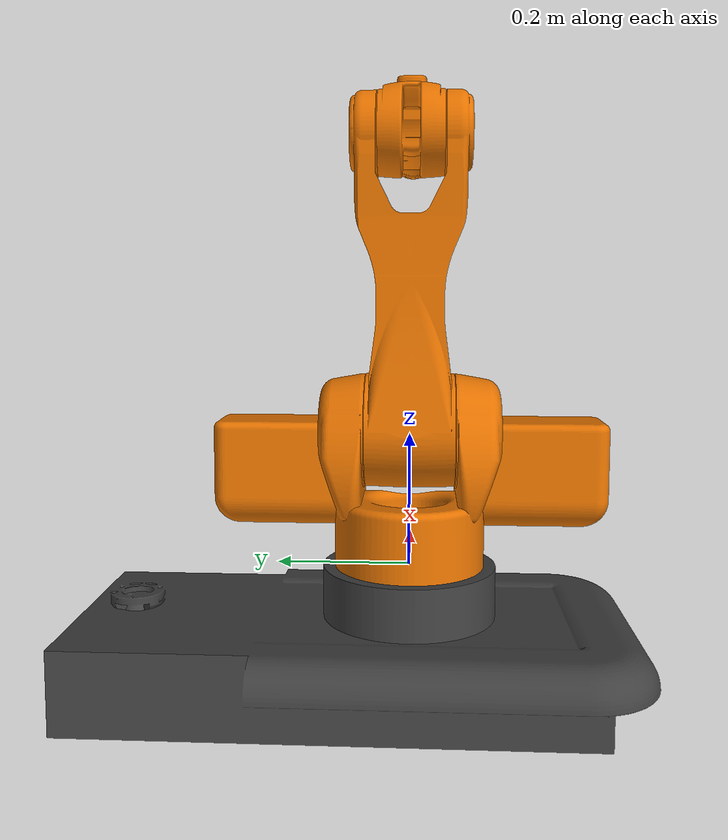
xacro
<?xml version="1.0"?>
<!--
  Wrapper URDF for motor 1 hardware test.
  Combines robot URDF + motor1_only ros2_control config.
-->
<robot xmlns:xacro="http://www.ros.org/wiki/xacro" name="neuroneimitationcarote">
    <xacro:arg name="initial_positions_file" default="$(find roby_hardware)/config/initial_positions.yaml" />
    <!-- Axe 5 : servo (poignet actuel, defaut) ou bldc (nouveau poignet) -->
    <xacro:arg name="wrist" default="servo" />
    <!-- Simulation seulement (commande roby en mode simulation, domaine 43) : mock_components a la place de RobySystem.
         JAMAIS sur le Pi5 : c'est la course au mock, steppers morts. -->
    <xacro:arg name="use_mock" default="false" />

    <!-- Import robot URDF -->
    <xacro:include filename="$(find neuroneimitationcarote_description)/urdf/robot.urdf.xacro" />

    <!-- Import steppers ros2_control config (joints 1-3 real, 4-5 mock) -->
    <xacro:include filename="$(find roby_hardware)/config/roby_hardware_steppers_only.ros2_control.xacro" />

    <xacro:roby_hardware_ros2_control name="RobySystem" initial_positions_file="$(arg initial_positions_file)" use_mock="$(arg use_mock)" wrist="$(arg wrist)"/>
</robot>

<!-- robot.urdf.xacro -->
<robot name="neuroneimitationcarote" xmlns:xacro="http://www.ros.org/wiki/xacro">

  <material name="dark_grey">
    <color rgba="0.25 0.25 0.25 1.0"/>
  </material>
  <material name="orange">
    <color rgba="0.9 0.45 0.0 1.0"/>
  </material>
  <material name="blue">
    <color rgba="0.1 0.4 0.8 1.0"/>
  </material>

<!-- Dummy world link requis par KDL -->
<link name="world"/>
<joint name="world_to_base" type="fixed">
  <parent link="world"/>
  <child  link="base_link"/>
  <origin xyz="0 0 0" rpy="0 0 0"/>
</joint>

  <!-- BASE_LINK -->
  <link name="base_link">
    <visual>
      <origin xyz="0 0 0.01" rpy="0 0 0"/>
      <geometry><cylinder radius="0.05" length="0.02"/></geometry>
      <material name="blue"/>
    </visual>
    <collision>
      <origin xyz="0 0 0.01" rpy="0 0 0"/>
      <geometry><cylinder radius="0.05" length="0.02"/></geometry>
    </collision>
  </link>

  <!-- JOINT 1 -->
  <joint name="joint_1" type="revolute">
    <parent link="base_link"/>
    <child  link="link_1"/>
    <!-- z = 0 : l'axe de base est POSE sur la face superieure du socle, qui affleure
         exactement l'origine (recalage du 2026-09-20). Valait 0.02 auparavant. -->
    <origin xyz="0 0 0" rpy="0 0 0"/>
    <axis xyz="0 0 1"/>
    <limit lower="-3.14159" upper="3.14159" effort="10.0" velocity="1.0"/>
    <dynamics damping="0.5" friction="0.1" acceleration="1.0"/>
  </joint>

  <!-- LINK 1 -->
  <link name="link_1">
    <visual>
      <origin xyz="0 0 0" rpy="0 0 0"/>
      <geometry>
        <mesh filename="package://neuroneimitationcarote_description/meshes/visual/section1_maillage.stl"
              scale="0.001 0.001 0.001"/>
      </geometry>
      <material name="orange"/>
    </visual>
    <collision>
      <origin xyz="0 0 0.082" rpy="0 0 0"/>
      <geometry><cylinder radius="0.120" length="0.16"/></geometry>
    </collision>
    <collision>
      <origin xyz="0.024 0 0.19" rpy="1.5707 0 0"/>
      <geometry><cylinder radius="0.10" length="0.28"/></geometry>
    </collision>
    <collision>
      <origin xyz="0.02 0 0.140" rpy="0 0 0"/>
      <geometry><box size="0.120 0.600 0.17"/></geometry>
    </collision>
    <inertial>
      <mass value="1.679"/>
      <origin xyz="0.013 0 0.129" rpy="0 0 0"/>
      <inertia ixx="0.050216" ixy="0.000001" ixz="-0.000845" iyy="0.010889" iyz="-0.000001" izz="0.046298"/>
    </inertial>
  </link>

  <!-- JOINT 2 -->
  <joint name="joint_2" type="revolute">
    <parent link="link_1"/>
    <child  link="link_2"/>
    <origin xyz="0.0249368 0 0.203" rpy="0 0 0"/>
    <axis xyz="0 1 0"/>
    <limit lower="-1.6" upper="2.1" effort="20.0" velocity="1.0"/>
    <dynamics damping="0.5" friction="0.1" acceleration="1.0"/>
  </joint>

  <!-- LINK 2 -->
  <link name="link_2">
    <visual>
      <origin xyz="0 0 0" rpy="0 0 0"/>
      <geometry>
        <mesh filename="package://neuroneimitationcarote_description/meshes/visual/section2_maillage.stl"
              scale="0.001 0.001 0.001"/>
      </geometry>
      <material name="orange"/>
    </visual>
    <collision>
      <origin xyz="-0.017 0 0.22" rpy="0 0 0"/>
      <geometry><cylinder radius="0.090" length="0.31"/></geometry>
    </collision>
    <collision>
      <origin xyz="-0.015 0 0.45" rpy="1.5707 0 0"/>
      <geometry><cylinder radius="0.098" length="0.18"/></geometry>
    </collision>
    <inertial>
      <mass value="1.0"/>
      <origin xyz="-0.010 0 0.205" rpy="0 0 0"/>
      <inertia ixx="0.020" ixy="0" ixz="0" iyy="0.020" iyz="0" izz="0.002"/>
    </inertial>
  </link>

  <!-- JOINT 3 -->
  <joint name="joint_3" type="revolute">
    <parent link="link_2"/>
    <child  link="link_3"/>
    <origin xyz="-0.014494 0 0.442345" rpy="0 0 0"/>
    <axis xyz="0 1 0"/>
    <limit lower="-3.0" upper="0.65" effort="15.0" velocity="1.0"/>
    <dynamics damping="0.5" friction="0.1" acceleration="1.0"/>
  </joint>

  <!-- LINK 3 — pas de collision intentionnellement -->
  <link name="link_3">
    <visual>
      <origin xyz="0 0 0" rpy="0 0 0"/>
      <geometry>
        <mesh filename="package://neuroneimitationcarote_description/meshes/visual/section3_maillage.stl"
              scale="0.001 0.001 0.001"/>
      </geometry>
      <material name="orange"/>
    </visual>
    <collision>
      <origin xyz="0.08 0 0.03" rpy="0 1.5708 0"/>
      <geometry><cylinder radius="0.058" length="0.080"/></geometry>
    </collision>
    <inertial>
      <mass value="0.5"/>
      <origin xyz="0.028 0 0.014" rpy="0 0 0"/>
      <inertia ixx="0.001" ixy="0" ixz="0" iyy="0.002" iyz="0" izz="0.002"/>
    </inertial>
  </link>

  <!-- JOINT 4 -->
  <joint name="joint_4" type="revolute">
    <parent link="link_3"/>
    <child  link="link_4"/>
    <origin xyz="0.11945 0 0.029736" rpy="0 0 0"/>
    <axis xyz="1 0 0"/>
    <limit lower="-3.1416" upper="3.1416" effort="5.0" velocity="2.0"/>
    <dynamics damping="0.2" friction="0.05" acceleration="2.0"/>
  </joint>

  <!-- LINK 4 -->
  <link name="link_4">
    <visual>
      <origin xyz="0 0 0" rpy="0 0 0"/>
      <geometry>
        <mesh filename="package://neuroneimitationcarote_description/meshes/visual/section4_maillage.stl"
              scale="0.001 0.001 0.001"/>
      </geometry>
      <material name="orange"/>
    </visual>
    <collision>
      <origin xyz="0.14 0 0" rpy="0 1.5708 0"/>
      <geometry><cylinder radius="0.058" length="0.290"/></geometry>
    </collision>
    <inertial>
      <mass value="0.4"/>
      <origin xyz="0.178 0 0" rpy="0 0 0"/>
      <inertia ixx="0.0003" ixy="0" ixz="0" iyy="0.004" iyz="0" izz="0.004"/>
    </inertial>
  </link>

  <!-- JOINT 5 -->
  <joint name="joint_5" type="revolute">
    <parent link="link_4"/>
    <child  link="link_5"/>
    <origin xyz="0.32345 0 0" rpy="0 0 0"/>
    <axis xyz="0 1 0"/>
    <limit lower="-1.6" upper="1.6" effort="5.0" velocity="2.0"/>
    <dynamics damping="0.2" friction="0.05" acceleration="2.0"/>
  </joint>

  <!-- LINK 5 -->
  <link name="link_5">
    <visual>
      <origin xyz="0 0 0" rpy="0 3.14 0"/>
      <geometry>
        <mesh filename="package://neuroneimitationcarote_description/meshes/visual/section5_maillage.stl"
              scale="0.001 0.001 0.001"/>
      </geometry>
      <material name="orange"/>
    </visual>
    <collision>
      <origin xyz="0.05 0 0" rpy="0 0 0"/>
      <geometry><box size="0.023 0.22 0.04"/></geometry>
    </collision>
    <collision>
      <origin xyz="0.04 0 0" rpy="0 1.5708 0"/>
      <geometry><cylinder radius="0.045" length="0.095"/></geometry>
    </collision>
    <collision>
      <origin xyz="-0.005 0 0" rpy="1.5708 0 0"/>
      <geometry><cylinder radius="0.038" length="0.098"/></geometry>
    </collision>
    <inertial>
      <mass value="0.2"/>
      <origin xyz="-0.048 0 0" rpy="0 0 0"/>
      <inertia ixx="0.0001" ixy="0" ixz="0" iyy="0.0001" iyz="0" izz="0.0001"/>
    </inertial>
  </link>

  <!-- PINCE — boîte fixe placeholder -->
  <joint name="joint_gripper" type="fixed">
    <parent link="link_5"/>
    <child  link="link_gripper"/>
    <origin xyz="0.09232 0 0.0005875" rpy="0 0 0"/>
  </joint>

  <link name="link_gripper">
    <visual>
      <origin xyz="0.05 0 0" rpy="0 0 0"/>
      <geometry>
        <box size="0.10 0.08 0.04"/>
      </geometry>
      <material name="dark_grey"/>
    </visual>
    <collision>
      <origin xyz="0.05 0 0" rpy="0 0 0"/>
      <geometry>
        <box size="0.10 0.08 0.04"/>
      </geometry>
    </collision>
    <inertial>
      <mass value="0.15"/>
      <origin xyz="0.05 0 0" rpy="0 0 0"/>
      <inertia ixx="0.0001" ixy="0" ixz="0"
               iyy="0.0001" iyz="0"
               izz="0.0001"/>
    </inertial>
  </link>

  <!-- TCP fixe pour MoveIt -->
  <joint name="joint_tcp" type="fixed">
    <parent link="link_gripper"/>
    <child  link="tcp"/>
    <origin xyz="0.10 0 0" rpy="0 0 0"/>
  </joint>
  <link name="tcp"/>

  <joint name="joint_socle" type="fixed">
    <parent link="base_link"/>
    <child  link="socle"/>
    <origin xyz="0 0 0" rpy="0 0 0"/>
  </joint>

  <link name="socle">
    <visual>
      <origin xyz="0.0005 0.111 -0.203" rpy="0 0 0"/>
      <geometry>
        <mesh filename="package://roby_environments/meshes/support_robot.stl"
              scale="0.001 0.001 0.001"/>
      </geometry>
      <material name="dark_grey"/>
    </visual>
  </link>

</robot>
